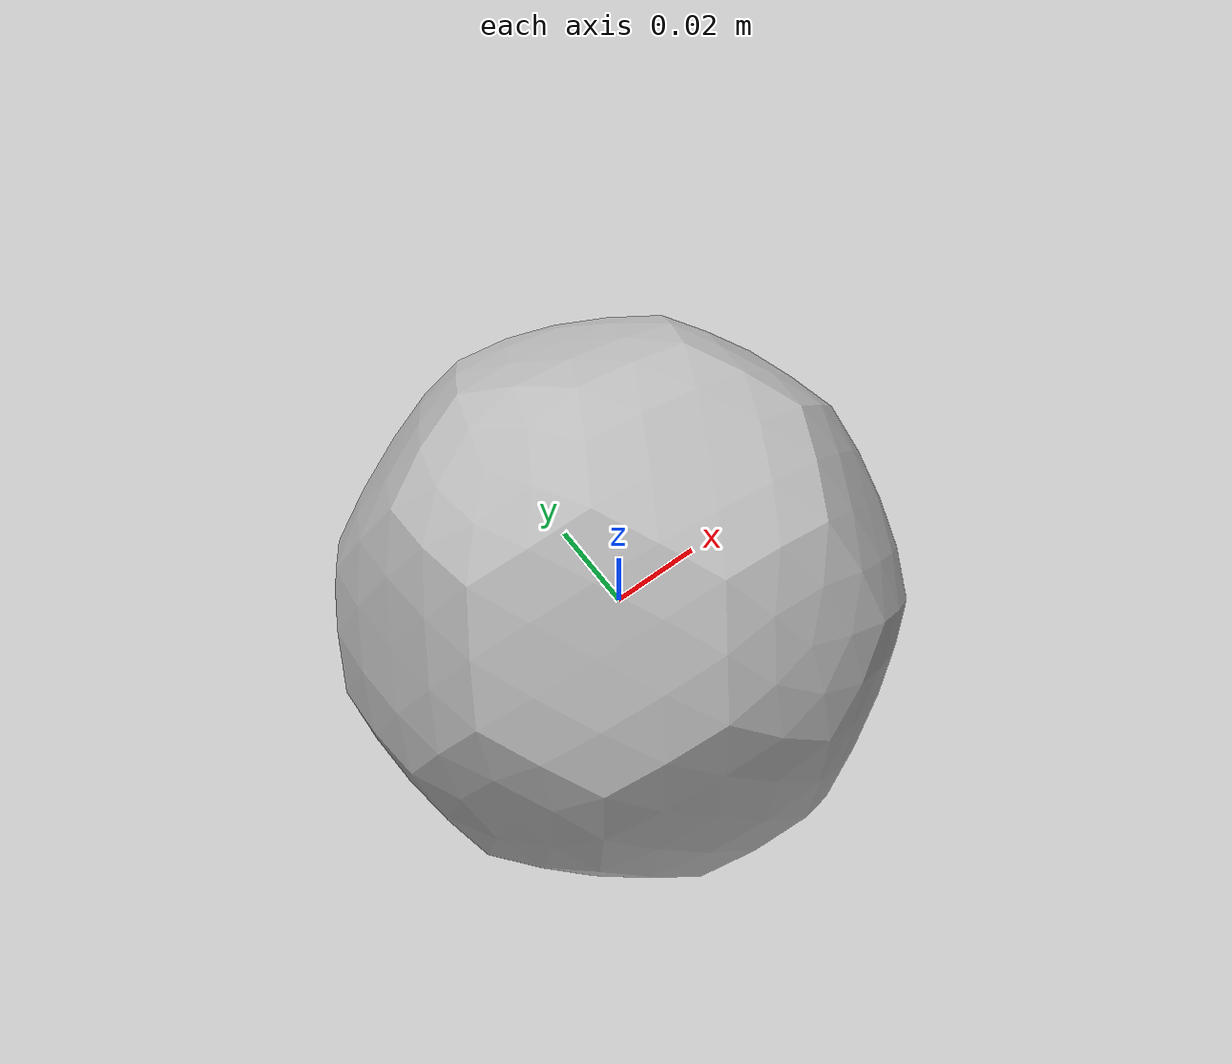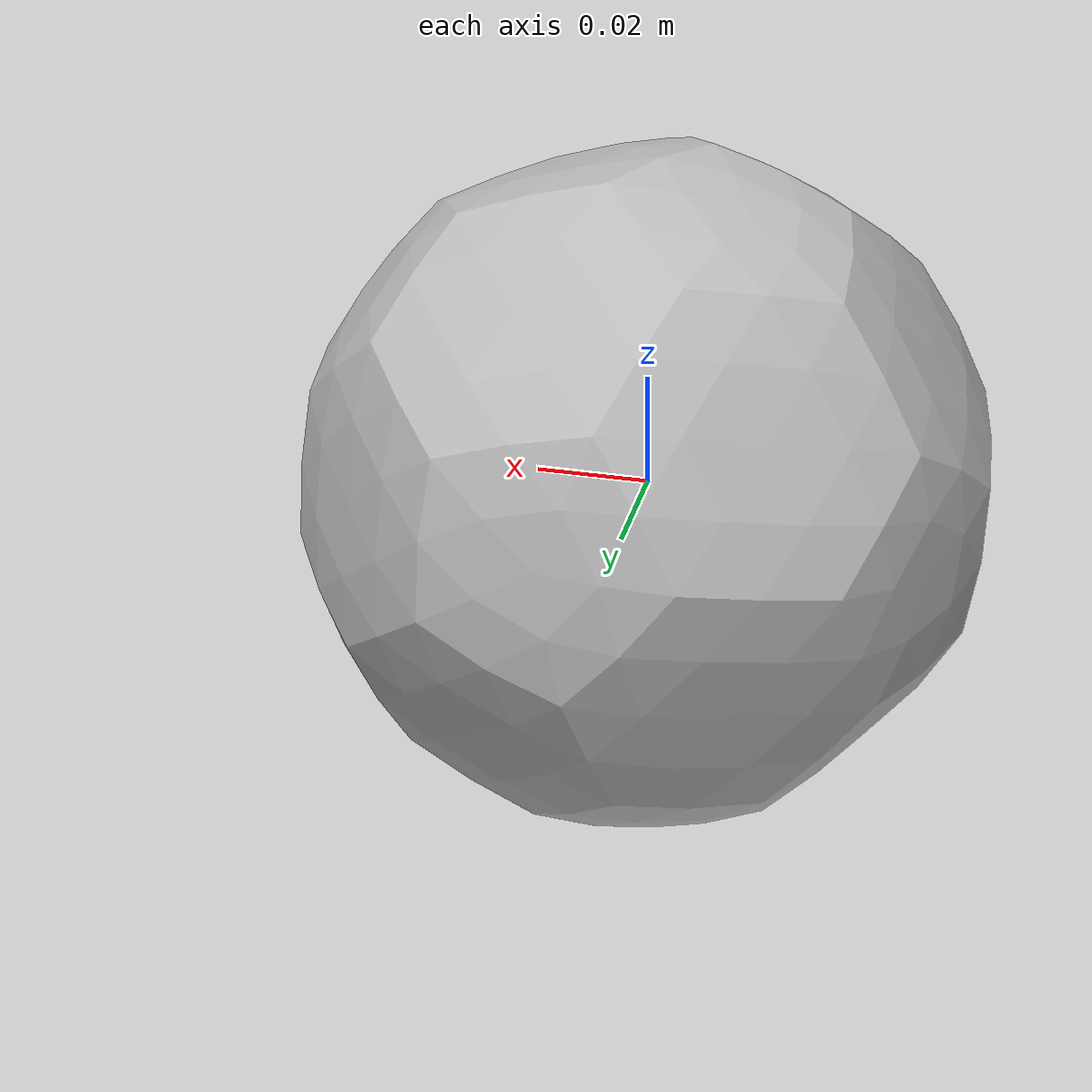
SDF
<?xml version="1.0" ?>
<sdf version="1.5">
  <model name="soccer_ball">
    <static>true</static>

    <link name="soccer_ball_link">
      <pose>0 0 0 0 0 0</pose>

      <inertial>
        <mass>0.026</mass>
        <inertia>
          <ixx>3.744e-5</ixx>
          <iyy>3.744e-5</iyy>
          <izz>3.744e-5</izz>
          <ixy>0</ixy>
          <ixz>0</ixz>
          <iyz>0</iyz>
        </inertia>
      </inertial>

      <collision name="collision">
        <geometry>
          <sphere>
            <radius>0.06</radius>
          </sphere>
        </geometry>
      </collision>

      <visual name="visual">
        <geometry>
          <mesh>
            <uri>model://robocup_3Dsim_ball/meshes/ball.dae</uri>
            <scale>0.06 0.06 0.06</scale>
          </mesh>
        </geometry>
      </visual>

    </link>
  </model>
</sdf>
